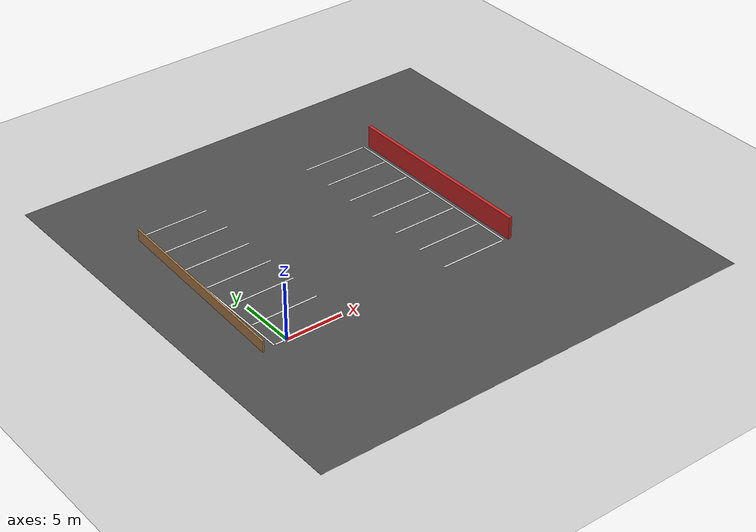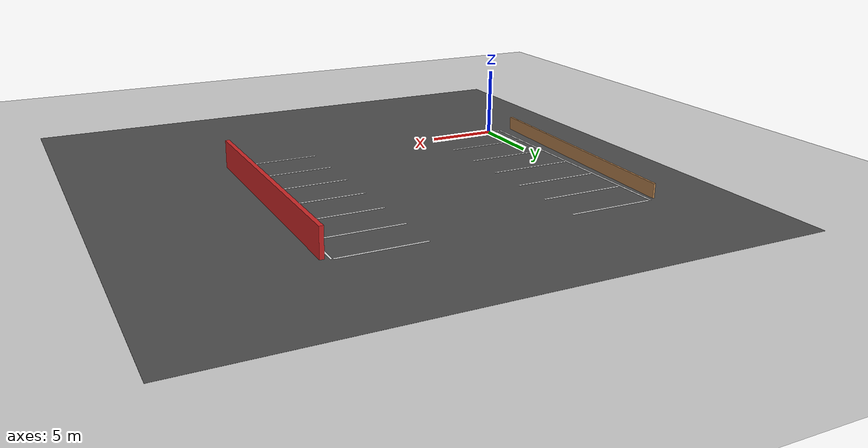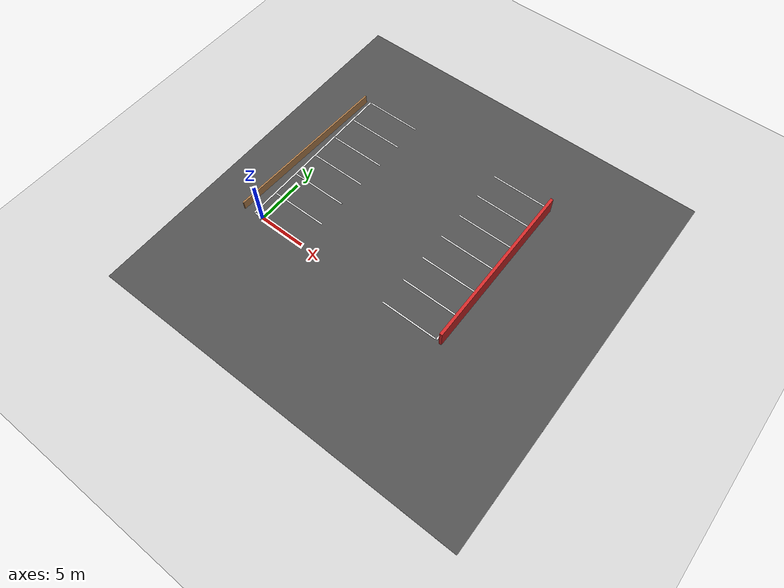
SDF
<sdf version="1.7">
 <world name="default">
  <light name="sun" type="directional">
   <pose>0 0 10 0 -0 0</pose>
   <diffuse>0.8 0.8 0.8 1</diffuse>
   <specular>0.2 0.2 0.2 1</specular>
   <attenuation>
    <range>1000</range>
    <constant>0.9</constant>
    <linear>0.01</linear>
    <quadratic>0.001</quadratic>
   </attenuation>
   <direction>-0.5 0.1 -0.9</direction>
   <spot><inner_angle>0</inner_angle><outer_angle>0</outer_angle><falloff>0</falloff></spot>
  </light>
  <model name="ground_plane">
   <static>1</static>
   <link name="link">
    <collision name="collision">
     <geometry><plane><normal>0 0 1</normal><size>100 100</size></plane></geometry>
     <surface><friction><ode><mu>100</mu><mu2>50</mu2></ode></friction></surface>
    </collision>
    <visual name="visual">
     <cast_shadows>0</cast_shadows>
     <geometry><plane><normal>0 0 1</normal><size>100 100</size></plane></geometry>
     <material>
      <script><uri>file://media/materials/scripts/gazebo.material</uri><name>Gazebo/Grey</name></script>
     </material>
    </visual>
    <velocity_decay><linear>0</linear><angular>0</angular></velocity_decay>
   </link>
  </model>
  <physics type="ode">
   <max_step_size>0.001</max_step_size>
   <real_time_factor>1</real_time_factor>
   <real_time_update_rate>1000</real_time_update_rate>
  </physics>
  <scene><ambient>0.4 0.4 0.4 1</ambient><background>0.7 0.7 0.7 1</background><shadows>1</shadows></scene>
  <spherical_coordinates>
   <surface_model>EARTH_WGS84</surface_model>
   <latitude_deg>0</latitude_deg>
   <longitude_deg>0</longitude_deg>
   <elevation>0</elevation>
   <heading_deg>0</heading_deg>
  </spherical_coordinates>
  <model name="asphalt_plane">
   <static>1</static>
   <link name="link">
    <collision name="collision"><geometry><box><size>40 40 0.01</size></box></geometry></collision>
    <visual name="visual">
     <cast_shadows>0</cast_shadows>
     <geometry><box><size>40 40 0.01</size></box></geometry>
     <material>
      <script>
       <uri>model://asphalt_plane/materials/scripts</uri>
       <uri>model://asphalt_plane/materials/textures</uri>
       <name>vrc/asphalt</name>
      </script>
     </material>
    </visual>
    <velocity_decay><linear>0</linear><angular>0</angular></velocity_decay>
   </link>
   <pose>13.0625 6.5 0 0 -0 0</pose>
  </model>
  <model name="line_0">
   <pose>2 0 0 0 -0 0</pose>
   <link name="link">
    <inertial>
     <mass>1</mass>
     <inertia><ixx>1</ixx><ixy>0</ixy><ixz>0</ixz><iyy>1</iyy><iyz>0</iyz><izz>1</izz></inertia>
    </inertial>
    <collision name="collision"><geometry><box><size>6 0.14 0.02</size></box></geometry></collision>
    <visual name="visual">
     <geometry><box><size>6 0.14 0.02</size></box></geometry>
     <material>
      <script><uri>file://media/materials/scripts/gazebo.material</uri><name>Gazebo/White</name></script>
     </material>
    </visual>
    <velocity_decay><linear>0</linear><angular>0</angular></velocity_decay>
   </link>
   <static>1</static>
  </model>
  <model name="line_1">
   <pose>2 3 0 0 -0 0</pose>
   <link name="link">
    <inertial>
     <mass>1</mass>
     <inertia><ixx>1</ixx><ixy>0</ixy><ixz>0</ixz><iyy>1</iyy><iyz>0</iyz><izz>1</izz></inertia>
    </inertial>
    <collision name="collision"><geometry><box><size>6 0.14 0.02</size></box></geometry></collision>
    <visual name="visual">
     <geometry><box><size>6 0.14 0.02</size></box></geometry>
     <material>
      <script><uri>file://media/materials/scripts/gazebo.material</uri><name>Gazebo/White</name></script>
     </material>
    </visual>
    <velocity_decay><linear>0</linear><angular>0</angular></velocity_decay>
   </link>
   <static>1</static>
  </model>
  <model name="line_2">
   <pose>2 6 0 0 -0 0</pose>
   <link name="link">
    <inertial>
     <mass>1</mass>
     <inertia><ixx>1</ixx><ixy>0</ixy><ixz>0</ixz><iyy>1</iyy><iyz>0</iyz><izz>1</izz></inertia>
    </inertial>
    <collision name="collision"><geometry><box><size>6 0.14 0.02</size></box></geometry></collision>
    <visual name="visual">
     <geometry><box><size>6 0.14 0.02</size></box></geometry>
     <material>
      <script><uri>file://media/materials/scripts/gazebo.material</uri><name>Gazebo/White</name></script>
     </material>
    </visual>
    <velocity_decay><linear>0</linear><angular>0</angular></velocity_decay>
   </link>
   <static>1</static>
  </model>
  <model name="line_3">
   <pose>2 9 0 0 -0 0</pose>
   <link name="link">
    <inertial>
     <mass>1</mass>
     <inertia><ixx>1</ixx><ixy>0</ixy><ixz>0</ixz><iyy>1</iyy><iyz>0</iyz><izz>1</izz></inertia>
    </inertial>
    <collision name="collision"><geometry><box><size>6 0.14 0.02</size></box></geometry></collision>
    <visual name="visual">
     <geometry><box><size>6 0.14 0.02</size></box></geometry>
     <material>
      <script><uri>file://media/materials/scripts/gazebo.material</uri><name>Gazebo/White</name></script>
     </material>
    </visual>
    <velocity_decay><linear>0</linear><angular>0</angular></velocity_decay>
   </link>
   <static>1</static>
  </model>
  <model name="line_4">
   <pose>2 12 0 0 -0 0</pose>
   <link name="link">
    <inertial>
     <mass>1</mass>
     <inertia><ixx>1</ixx><ixy>0</ixy><ixz>0</ixz><iyy>1</iyy><iyz>0</iyz><izz>1</izz></inertia>
    </inertial>
    <collision name="collision"><geometry><box><size>6 0.14 0.02</size></box></geometry></collision>
    <visual name="visual">
     <geometry><box><size>6 0.14 0.02</size></box></geometry>
     <material>
      <script><uri>file://media/materials/scripts/gazebo.material</uri><name>Gazebo/White</name></script>
     </material>
    </visual>
    <velocity_decay><linear>0</linear><angular>0</angular></velocity_decay>
   </link>
   <static>1</static>
  </model>
  <model name="line_5">
   <pose>2 15 0 0 -0 0</pose>
   <link name="link">
    <inertial>
     <mass>1</mass>
     <inertia><ixx>1</ixx><ixy>0</ixy><ixz>0</ixz><iyy>1</iyy><iyz>0</iyz><izz>1</izz></inertia>
    </inertial>
    <collision name="collision"><geometry><box><size>6 0.14 0.02</size></box></geometry></collision>
    <visual name="visual">
     <geometry><box><size>6 0.14 0.02</size></box></geometry>
     <material>
      <script><uri>file://media/materials/scripts/gazebo.material</uri><name>Gazebo/White</name></script>
     </material>
    </visual>
    <velocity_decay><linear>0</linear><angular>0</angular></velocity_decay>
   </link>
   <static>1</static>
  </model>
  <model name="line_6">
   <pose>2 18 0 0 -0 0</pose>
   <link name="link">
    <inertial>
     <mass>1</mass>
     <inertia><ixx>1</ixx><ixy>0</ixy><ixz>0</ixz><iyy>1</iyy><iyz>0</iyz><izz>1</izz></inertia>
    </inertial>
    <collision name="collision"><geometry><box><size>6 0.14 0.02</size></box></geometry></collision>
    <visual name="visual">
     <geometry><box><size>6 0.14 0.02</size></box></geometry>
     <material>
      <script><uri>file://media/materials/scripts/gazebo.material</uri><name>Gazebo/White</name></script>
     </material>
    </visual>
    <velocity_decay><linear>0</linear><angular>0</angular></velocity_decay>
   </link>
   <static>1</static>
  </model>
  <model name="line_7">
   <pose>18 0 0 0 -0 0</pose>
   <link name="link">
    <inertial>
     <mass>1</mass>
     <inertia><ixx>1</ixx><ixy>0</ixy><ixz>0</ixz><iyy>1</iyy><iyz>0</iyz><izz>1</izz></inertia>
    </inertial>
    <collision name="collision"><geometry><box><size>6 0.14 0.02</size></box></geometry></collision>
    <visual name="visual">
     <geometry><box><size>6 0.14 0.02</size></box></geometry>
     <material>
      <script><uri>file://media/materials/scripts/gazebo.material</uri><name>Gazebo/White</name></script>
     </material>
    </visual>
    <velocity_decay><linear>0</linear><angular>0</angular></velocity_decay>
   </link>
   <static>1</static>
  </model>
  <model name="line_8">
   <pose>18 3 0 0 -0 0</pose>
   <link name="link">
    <inertial>
     <mass>1</mass>
     <inertia><ixx>1</ixx><ixy>0</ixy><ixz>0</ixz><iyy>1</iyy><iyz>0</iyz><izz>1</izz></inertia>
    </inertial>
    <collision name="collision"><geometry><box><size>6 0.14 0.02</size></box></geometry></collision>
    <visual name="visual">
     <geometry><box><size>6 0.14 0.02</size></box></geometry>
     <material>
      <script><uri>file://media/materials/scripts/gazebo.material</uri><name>Gazebo/White</name></script>
     </material>
    </visual>
    <velocity_decay><linear>0</linear><angular>0</angular></velocity_decay>
   </link>
   <static>1</static>
  </model>
  <model name="line_9">
   <pose>18 6 0 0 -0 0</pose>
   <link name="link">
    <inertial>
     <mass>1</mass>
     <inertia><ixx>1</ixx><ixy>0</ixy><ixz>0</ixz><iyy>1</iyy><iyz>0</iyz><izz>1</izz></inertia>
    </inertial>
    <collision name="collision"><geometry><box><size>6 0.14 0.02</size></box></geometry></collision>
    <visual name="visual">
     <geometry><box><size>6 0.14 0.02</size></box></geometry>
     <material>
      <script><uri>file://media/materials/scripts/gazebo.material</uri><name>Gazebo/White</name></script>
     </material>
    </visual>
    <velocity_decay><linear>0</linear><angular>0</angular></velocity_decay>
   </link>
   <static>1</static>
  </model>
  <model name="line_10">
   <pose>18 9 0 0 -0 0</pose>
   <link name="link">
    <inertial>
     <mass>1</mass>
     <inertia><ixx>1</ixx><ixy>0</ixy><ixz>0</ixz><iyy>1</iyy><iyz>0</iyz><izz>1</izz></inertia>
    </inertial>
    <collision name="collision"><geometry><box><size>6 0.14 0.02</size></box></geometry></collision>
    <visual name="visual">
     <geometry><box><size>6 0.14 0.02</size></box></geometry>
     <material>
      <script><uri>file://media/materials/scripts/gazebo.material</uri><name>Gazebo/White</name></script>
     </material>
    </visual>
    <velocity_decay><linear>0</linear><angular>0</angular></velocity_decay>
   </link>
   <static>1</static>
  </model>
  <model name="line_11">
   <pose>18 12 0 0 -0 0</pose>
   <link name="link">
    <inertial>
     <mass>1</mass>
     <inertia><ixx>1</ixx><ixy>0</ixy><ixz>0</ixz><iyy>1</iyy><iyz>0</iyz><izz>1</izz></inertia>
    </inertial>
    <collision name="collision"><geometry><box><size>6 0.14 0.02</size></box></geometry></collision>
    <visual name="visual">
     <geometry><box><size>6 0.14 0.02</size></box></geometry>
     <material>
      <script><uri>file://media/materials/scripts/gazebo.material</uri><name>Gazebo/White</name></script>
     </material>
    </visual>
    <velocity_decay><linear>0</linear><angular>0</angular></velocity_decay>
   </link>
   <static>1</static>
  </model>
  <model name="line_12">
   <pose>18 15 0 0 -0 0</pose>
   <link name="link">
    <inertial>
     <mass>1</mass>
     <inertia><ixx>1</ixx><ixy>0</ixy><ixz>0</ixz><iyy>1</iyy><iyz>0</iyz><izz>1</izz></inertia>
    </inertial>
    <collision name="collision"><geometry><box><size>6 0.14 0.02</size></box></geometry></collision>
    <visual name="visual">
     <geometry><box><size>6 0.14 0.02</size></box></geometry>
     <material>
      <script><uri>file://media/materials/scripts/gazebo.material</uri><name>Gazebo/White</name></script>
     </material>
    </visual>
    <velocity_decay><linear>0</linear><angular>0</angular></velocity_decay>
   </link>
   <static>1</static>
  </model>
  <model name="line_13">
   <pose>18 18 0 0 -0 0</pose>
   <link name="link">
    <inertial>
     <mass>1</mass>
     <inertia><ixx>1</ixx><ixy>0</ixy><ixz>0</ixz><iyy>1</iyy><iyz>0</iyz><izz>1</izz></inertia>
    </inertial>
    <collision name="collision"><geometry><box><size>6 0.14 0.02</size></box></geometry></collision>
    <visual name="visual">
     <geometry><box><size>6 0.14 0.02</size></box></geometry>
     <material>
      <script><uri>file://media/materials/scripts/gazebo.material</uri><name>Gazebo/White</name></script>
     </material>
    </visual>
    <velocity_decay><linear>0</linear><angular>0</angular></velocity_decay>
   </link>
   <static>1</static>
  </model>
  <model name="line_14">
   <pose>-1.125 9 0 0 -0 1.5708</pose>
   <link name="link">
    <inertial>
     <mass>1</mass>
     <inertia><ixx>1</ixx><ixy>0</ixy><ixz>0</ixz><iyy>1</iyy><iyz>0</iyz><izz>1</izz></inertia>
    </inertial>
    <collision name="collision"><geometry><box><size>18 0.14 0.02</size></box></geometry></collision>
    <visual name="visual">
     <geometry><box><size>18 0.14 0.02</size></box></geometry>
     <material>
      <script><uri>file://media/materials/scripts/gazebo.material</uri><name>Gazebo/White</name></script>
     </material>
    </visual>
    <velocity_decay><linear>0</linear><angular>0</angular></velocity_decay>
   </link>
   <static>1</static>
  </model>
  <model name="line_15">
   <pose>21.125 9 0 0 -0 1.5708</pose>
   <link name="link">
    <inertial>
     <mass>1</mass>
     <inertia><ixx>1</ixx><ixy>0</ixy><ixz>0</ixz><iyy>1</iyy><iyz>0</iyz><izz>1</izz></inertia>
    </inertial>
    <collision name="collision"><geometry><box><size>18 0.14 0.02</size></box></geometry></collision>
    <visual name="visual">
     <geometry><box><size>18 0.14 0.02</size></box></geometry>
     <material>
      <script><uri>file://media/materials/scripts/gazebo.material</uri><name>Gazebo/White</name></script>
     </material>
    </visual>
    <velocity_decay><linear>0</linear><angular>0</angular></velocity_decay>
   </link>
   <static>1</static>
  </model>
  <scene>
   <sky><clouds><speed>12</speed></clouds></sky>
   <ambient>1 1 1 1</ambient>
   <shadows>0</shadows>
   <grid>0</grid>
   <background>0.7 0.7 0.7 1</background>
  </scene>
  <gravity>0 0 -9.8</gravity>
  <magnetic_field>6e-06 2.3e-05 -4.2e-05</magnetic_field>
  <atmosphere type="adiabatic"/>
  <model name="unit_box">
   <pose>21.6164 8.82838 1.00472 -3e-06 3.1e-05 1.57038</pose>
   <link name="link">
    <inertial>
     <mass>1</mass>
     <inertia>
      <ixx>0.166667</ixx>
      <ixy>0</ixy>
      <ixz>0</ixz>
      <iyy>0.166667</iyy>
      <iyz>0</iyz>
      <izz>0.166667</izz>
     </inertia>
    </inertial>
    <collision name="collision"><geometry><box><size>18 0.30001 2</size></box></geometry></collision>
    <visual name="visual">
     <geometry><box><size>18 0.30001 2</size></box></geometry>
     <material>
      <script><name>Gazebo/Red</name><uri>file://media/materials/scripts/gazebo.material</uri></script>
     </material>
    </visual>
   </link>
  </model>
  <model name="wall_0">
   <pose>-0.954702 8.74097 0 0 0 -1.60862</pose>
   <link name="Wall_0">
    <collision name="Wall_0_Collision">
     <geometry><box><size>18 0.15 1</size></box></geometry>
     <pose>0 0 0.5 0 -0 0</pose>
    </collision>
    <visual name="Wall_0_Visual">
     <pose>0 0 0.5 0 -0 0</pose>
     <geometry><box><size>18 0.15 1</size></box></geometry>
     <material>
      <script><uri>file://media/materials/scripts/gazebo.material</uri><name>Gazebo/Wood</name></script>
      <ambient>0.760784 0.662745 0.627451 1</ambient>
     </material>
     <meta><layer>0</layer></meta>
    </visual>
    <pose>0 -0.9275 0 0 -0 3.14159</pose>
   </link>
   <static>1</static>
  </model>
 </world>
</sdf>
